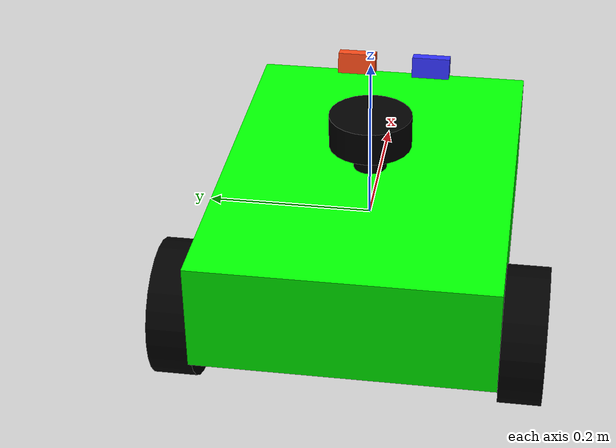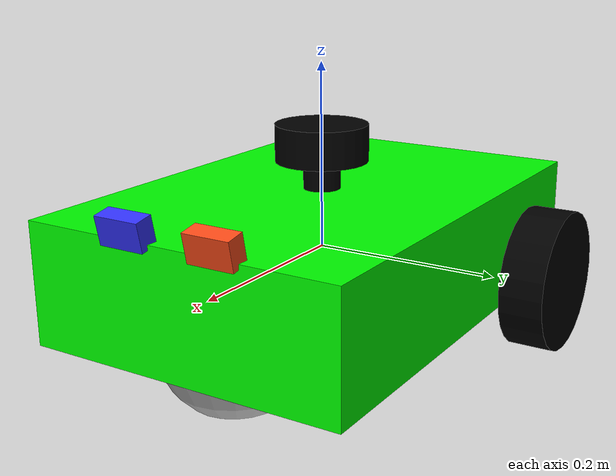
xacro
<?xml version="1.0"?>
<!-- URDF DESCRIPTION OF THE DIFFERENTIAL DRIVE ROBOT    	-->
<!-- Made by Aleksandar Haber		    				-->
<!-- June 2024           		 					    -->
<!-- Modified by Samuel Folorunsho Mar 2025 -->

<robot name="differential_drive_robot" xmlns:xacro="http://www.ros.org/wiki/xacro">

<!-- Body dimensions -->
<xacro:property name="base_link_x_dim" value="0.5"/>
<xacro:property name="base_link_y_dim" value="0.35"/>
<xacro:property name="base_link_z_dim" value="0.13"/>

<!-- Wheel dimensions and locations -->
<xacro:property name="wheel_link_radius" value="0.08"/>
<xacro:property name="wheel_link_length" value="0.05"/>
<xacro:property name="wheel_link_z_location" value="-0.05"/>

<!-- Caster sphere dimensions and locations -->
<xacro:property name="caster_link_radius" value="0.08"/>
<xacro:property name="caster_link_z_location" value="-0.05"/>

<!-- Material density -->
<xacro:property name="body_density" value="2710.0"/>
<xacro:property name="wheel_density" value="2710.0"/>
<xacro:property name="caster_density" value="2710.0"/>

<!-- Pi constant -->
<xacro:property name="pi_const" value="3.14159265"/>

<!-- Robot body mass, wheel mass, caster mass -->
<xacro:property name="body_mass" value="${body_density*base_link_x_dim*base_link_y_dim*base_link_z_dim}"/>
<xacro:property name="wheel_mass" value="${wheel_density*pi_const*wheel_link_radius*wheel_link_radius*wheel_link_length}"/>
<xacro:property name="caster_mass" value="${caster_density*(4.0/3.0)*pi_const*caster_link_radius*caster_link_radius*caster_link_radius}"/>

<!-- Moments of inertia of the wheel -->
<xacro:property name="Iz_wheel" value="${0.5*wheel_mass*wheel_link_radius*wheel_link_radius}" />
<xacro:property name="I_wheel"
value="${(1.0/12.0)*wheel_mass*(3.0*wheel_link_radius*wheel_link_radius+wheel_link_length*wheel_link_length)}" />

<!-- Moments of inertia of the caster sphere -->
<xacro:property name="I_caster" value="${(2.0/5.0)*caster_mass*caster_link_radius*caster_link_radius}" />

<!-- This macro defines the complete inertial section of the wheel -->
<!-- It is used later in the code -->
<xacro:macro name="inertia_wheel">
	<inertial>
	<origin rpy="0 0 0" xyz="0 0 0"/>
	<mass value="${wheel_mass}"/>
	<inertia ixx="${I_wheel}" ixy="0.0" ixz="0.0" iyy="${I_wheel}" iyz="0" izz="${Iz_wheel}" />
	</inertial>
</xacro:macro>

<!-- This macro defines the complete inertial section of the caster -->
<!-- It is used later in the code -->
<xacro:macro name="inertia_caster">
	<inertial>
	<origin rpy="0 0 0" xyz="0 0 0"/>
	<mass value="${caster_mass}"/>
	<inertia ixx="${I_caster}" ixy="0.0" ixz="0.0" iyy="${I_caster}" iyz="0" izz="${I_caster}" />
	</inertial>
</xacro:macro>

<!-- COLOR -->
<material name="white">
        <color rgba="1 1 1 1" />
    </material>

    <material name="orange">
        <color rgba="1 0.3 0.1 1"/>
    </material>

    <material name="blue">
        <color rgba="0.2 0.2 1 1"/>
    </material>

    <material name="black">
        <color rgba="0 0 0 1"/>
    </material>

    <material name="red">
        <color rgba="1 0 0 1"/>
    </material>

    <material name="green">
        <color rgba="0 1 0 1"/>
    </material>

    <material name="gray">
        <color rgba="0.7 0.7 0.7 1"/>
    </material>

<!-- Include the modular LIDAR sensor file -->
<xacro:include filename="$(find danny_bot)/model/sensors/lidar.xacro" />
<!-- Include the modular camera sensor file -->
<xacro:include filename="$(find danny_bot)/model/sensors/camera.xacro" />
<!-- Include the modular depth camera sensor file -->
<xacro:include filename="$(find danny_bot)/model/sensors/depth_camera.xacro" />
<!-- Include the modular IMU sensor file -->
<xacro:include filename="$(find danny_bot)/model/sensors/imu.xacro" />
<!-- Include the modular GPS sensor file -->
<xacro:include filename="$(find danny_bot)/model/sensors/gps.xacro" />

<!-- Over here we include the file that defines extra Gazebo options and motion control driver -->
<xacro:include filename="$(find danny_bot)/model/robot.gazebo" />

<!-- FROM HERE WE DEFINE LINKS, JOINTS 				 -->

<!-- We need to have this dummy link otherwise Gazebo will complain -->
<link name="base_footprint">
</link>

<joint name="base_joint" type="fixed">
	<parent link="base_footprint"/>
	<child link="base_link"/>
</joint>

<!-- START: Body link of the robot -->
<link name="base_link">
	<visual>
		<geometry>
			<box size="${base_link_x_dim} ${base_link_y_dim} ${base_link_z_dim}" />
		</geometry>
	<material name="green"/>
	<origin rpy="0 0 0" xyz="0 0 0"/>
	</visual>

	<collision>
		<geometry>
			<box size="${base_link_x_dim} ${base_link_y_dim} ${base_link_z_dim}" />
		</geometry>
		<origin rpy="0 0 0" xyz="0 0 0"/>
	</collision>

	<inertial>
		<origin rpy="0 0 0" xyz="0 0 0"/>
		<mass value="${body_mass}"/>
	<inertia
	ixx="${(1/12)*body_mass*(base_link_y_dim*base_link_y_dim+base_link_z_dim*base_link_z_dim)}" ixy="0" 		ixz="0" iyy="${(1/12)*body_mass*(base_link_x_dim*base_link_x_dim+base_link_z_dim*base_link_z_dim)}" 		iyz="0"
	izz="${(1/12)*body_mass*(base_link_y_dim*base_link_y_dim+base_link_x_dim*base_link_x_dim)}" />
	</inertial>
</link>

<!-- END: Body link of the robot -->

<!-- START: Back right wheel of the robot and the joint -->

<joint name="right_wheel_joint" type="continuous" >
	<parent link="base_link"/>
	<child  link="right_wheel_link" />
	<origin xyz="${-2*wheel_link_radius} ${-base_link_y_dim/2-wheel_link_length/2} ${wheel_link_z_location}" rpy="0 0 0" />
	<axis xyz="0 1 0"/>
	<limit effort="1000" velocity="1000"/>
	<dynamics damping="1.0" friction="1.0"/>
</joint>

<link name="right_wheel_link">
	<visual>
		<origin rpy="1.570795 0 0" xyz="0 0 0"/>
		<geometry>
			<cylinder length="${wheel_link_length}" radius="${wheel_link_radius}"/>
		</geometry>
	<material name="black"/>
	</visual>

	<collision>
		<origin rpy="1.570795 0 0" xyz="0 0 0"/>
		<geometry>
			<cylinder length="${wheel_link_length}" radius="${wheel_link_radius}"/>
		</geometry>
	</collision>

	<xacro:inertia_wheel />
</link>

<!-- END: Back right wheel of the robot and the joint -->

<!-- START: Back left wheel of the robot and the joint -->

<joint name="left_wheel_joint" type="continuous" >
	<parent link="base_link"/>
	<child  link="left_wheel_link" />
	<origin xyz="${-2*wheel_link_radius} ${base_link_y_dim/2+wheel_link_length/2} ${wheel_link_z_location}" rpy="0 0 0" />
	<axis xyz="0 1 0"/>
	<limit effort="1000" velocity="1000"/>
	<dynamics damping="1.0" friction="1.0"/>
</joint>

<link name="left_wheel_link">
	<visual>
		<origin rpy="1.570795 0 0" xyz="0 0 0"/>
		<geometry>
			<cylinder length="${wheel_link_length}" radius="${wheel_link_radius}"/>
		</geometry>
	<material name="black"/>
	</visual>

	<collision>
		<origin rpy="1.570795 0 0" xyz="0 0 0"/>
		<geometry>
			<cylinder length="${wheel_link_length}" radius="${wheel_link_radius}"/>
		</geometry>
	</collision>
	<xacro:inertia_wheel />
</link>

<!-- END: Back left wheel of the robot and the joint -->

<!-- START: Caster wheel										 -->

<joint name="caster_joint" type="fixed">
        <parent link="base_link"/>
        <child link="caster_link"/>
        <origin xyz="${2*caster_link_radius} 0 ${caster_link_z_location}" rpy="0 0 0"/>
</joint>

<link name="caster_link">
	<visual>
		<origin rpy="0 0 0" xyz="0 0 0"/>
		<geometry>
			<sphere radius="${caster_link_radius}" />
		</geometry>
	<material name="gray"/>
	</visual>

	<collision>
		<origin rpy="0 0 0" xyz="0 0 0"/>
		<geometry>
			<sphere radius="${caster_link_radius}" />
		</geometry>
	</collision>
	<xacro:inertia_caster />
</link>

<!-- END: Caster wheel											 -->

<!-- INCLUDING SENSOR REFERENCES                                          -->

<!-- Moved to modular file sensors/...-->

<!-- Add modular sensors using macros -->
<xacro:lidar_sensor parent_link="base_link" />
<xacro:camera_sensor parent_link="base_link" x_offset="0.25" y_offset="0.05" z_offset="${base_link_z_dim/2 + 0.01}" />
<xacro:depth_camera_sensor parent_link="base_link" x_offset="0.25" y_offset="-0.05" z_offset="${base_link_z_dim/2 + 0.01}" />
<xacro:imu_sensor parent_link="base_link" />
<xacro:gps_sensor parent_link="base_link" />

</robot>

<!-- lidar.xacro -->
<robot xmlns:xacro="http://www.ros.org/wiki/xacro">

  <!-- LIDAR connector and sensor -->
  <xacro:macro name="lidar_sensor" params="parent_link">
    <!-- LIDAR connector link -->
    <joint name="lidar_connector_joint" type="fixed">
        <parent link="${parent_link}"/>
        <child link="lidar_connector_link"/>
        <origin xyz="0 0 ${base_link_z_dim/2}" rpy="0 0 0"/>
    </joint>

    <link name="lidar_connector_link">
        <visual>
            <origin xyz="0 0 0" rpy="0 0 0"/>
            <geometry>
                <cylinder radius="0.02" length="0.06"/>
            </geometry>
            <material name="black"/>
        </visual>
        <collision>
            <origin xyz="0 0 0" rpy="0 0 0"/>
            <geometry>
                <cylinder radius="0.02" length="0.06"/>
            </geometry>
        </collision>
        <inertial>
            <mass value="0.1"/>
            <origin xyz="0 0 0" rpy="0 0 0"/>
            <inertia ixx="0.000033" ixy="0" ixz="0" iyy="0.000033" iyz="0" izz="0.000033"/>
        </inertial>
    </link>

    <!-- LIDAR sensor -->
    <joint name="lidar_joint" type="fixed">
        <parent link="lidar_connector_link"/>
        <child link="lidar_link"/>
        <origin xyz="0 0 0.05" rpy="0 0 0"/>
    </joint>

    <link name="lidar_link">
        <visual>
            <origin xyz="0 0 0" rpy="0 0 0"/>
            <geometry>
                <cylinder radius="0.05" length="0.04"/>
            </geometry>
            <material name="black"/>
        </visual>
        <collision>
            <origin xyz="0 0 0" rpy="0 0 0"/>
            <geometry>
                <cylinder radius="0.05" length="0.04"/>
            </geometry>
        </collision>
        <inertial>
            <mass value="0.1"/>
            <origin xyz="0 0 0" rpy="0 0 0"/>
            <inertia ixx="0.000033" ixy="0" ixz="0" iyy="0.000033" iyz="0" izz="0.000033"/>
        </inertial>
    </link>

    <!-- LIDAR sensor in Gazebo -->
    <gazebo reference="lidar_link">
      <material>Gazebo/Black</material>
      <sensor name="lidar" type="ray">
        <pose>0 0 0 0 0 0</pose>
        <visualize>true</visualize>
        <update_rate>10</update_rate>
        <ray>
          <scan>
            <horizontal>
              <samples>360</samples>
              <resolution>1</resolution>
              <min_angle>-3.14159</min_angle>
              <max_angle>3.14159</max_angle>
            </horizontal>
          </scan>
          <range>
            <min>0.1</min>
            <max>10.0</max>
            <resolution>0.01</resolution>
          </range>
          <noise>
            <type>gaussian</type>
            <mean>0.0</mean>
            <stddev>0.01</stddev>
          </noise>
        </ray>
        <plugin name="lidar_controller" filename="libgazebo_ros_ray_sensor.so">
          <ros>
            <namespace>/</namespace>
            <remapping>~/out:=scan</remapping>
          </ros>
          <output_type>sensor_msgs/LaserScan</output_type>
          <frame_name>lidar_link</frame_name>
        </plugin>
      </sensor>
    </gazebo>

    <gazebo reference="lidar_connector_link">
      <mu1>0.000002</mu1>
      <mu2>0.000002</mu2>
      <material>Gazebo/Black</material>
    </gazebo>
  </xacro:macro>

</robot>

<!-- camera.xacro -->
<robot xmlns:xacro="http://www.ros.org/wiki/xacro">

  <!-- Camera sensor -->
  <xacro:macro name="camera_sensor" params="parent_link x_offset y_offset z_offset">
    <!-- Camera sensor -->
    <joint name="camera_joint" type="fixed">
        <parent link="${parent_link}"/>
        <child link="camera_link"/>
        <origin xyz="${x_offset} ${y_offset} ${z_offset}" rpy="0 0.2 0"/>  <!-- Positioned forward and slightly tilted down -->
    </joint>

    <link name="camera_link">
        <visual>
            <origin xyz="0 0 0" rpy="0 ${pi_const/2} 0"/>
            <geometry>
                <box size="0.03 0.05 0.02"/>
            </geometry>
            <material name="orange"/>
        </visual>
        <collision>
            <origin xyz="0 0 0" rpy="0 0 0"/>
            <geometry>
                <box size="0.03 0.05 0.05"/>
            </geometry>
        </collision>
        <inertial>
            <mass value="0.1"/>
            <origin xyz="0 0 0" rpy="0 0 0"/>
            <inertia ixx="0.000033" ixy="0" ixz="0" iyy="0.000033" iyz="0" izz="0.000033"/>
        </inertial>
    </link>

    <!-- Camera optical frame -->
    <joint name="camera_optical_joint" type="fixed">
        <parent link="camera_link"/>
        <child link="camera_optical_frame"/>
        <origin xyz="0 0 0" rpy="${-pi_const/2} 0 ${-pi_const/2}"/>
    </joint>

    <link name="camera_optical_frame"/>

    <!-- Camera sensor in Gazebo -->
    <gazebo reference="camera_link">
      <material>Gazebo/Orange</material>
      <sensor name="camera" type="camera">
        <camera>
          <horizontal_fov>1.3962634</horizontal_fov>
          <image>
            <width>640</width>
            <height>480</height>
            <format>R8G8B8</format>
          </image>
          <clip>
            <near>0.02</near>
            <far>300</far>
          </clip>
          <noise>
            <type>gaussian</type>
            <mean>0.0</mean>
            <stddev>0.007</stddev>
          </noise>
        </camera>
        <always_on>1</always_on>
        <update_rate>30</update_rate>
        <visualize>true</visualize>
        <plugin name="camera_controller" filename="libgazebo_ros_camera.so">
          <ros>
            <namespace>/</namespace>
            <remapping>image_raw:=camera/image_raw</remapping>
            <remapping>camera_info:=camera/camera_info</remapping>
          </ros>
          <output_type>sensor_msgs/Image</output_type>
          <frame_name>camera_optical_frame</frame_name>
          <camera_name>camera</camera_name>
          <update_rate>30.0</update_rate>
        </plugin>
      </sensor>
    </gazebo>
  </xacro:macro>

</robot>

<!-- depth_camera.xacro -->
<robot xmlns:xacro="http://www.ros.org/wiki/xacro">

  <!-- Depth Camera sensor -->
  <xacro:macro name="depth_camera_sensor" params="parent_link x_offset y_offset z_offset">
    <!-- Depth Camera mount directly on body -->
    <joint name="depth_camera_joint" type="fixed">
        <parent link="${parent_link}"/>
        <child link="depth_camera_link"/>
        <origin xyz="${x_offset} ${y_offset} ${z_offset}" rpy="0 0.2 0"/>  <!-- Positioned forward and slightly tilted down -->
    </joint>

    <link name="depth_camera_link">
        <visual>
            <origin xyz="0 0 0" rpy="0 ${pi_const/2} 0"/>
            <geometry>
                <box size="0.03 0.05 0.02"/>
            </geometry>
            <material name="blue"/>
        </visual>
        <collision>
            <origin xyz="0 0 0" rpy="0 0 0"/>
            <geometry>
                <box size="0.03 0.05 0.05"/>
            </geometry>
        </collision>
        <inertial>
            <mass value="0.1"/>
            <origin xyz="0 0 0" rpy="0 0 0"/>
            <inertia ixx="0.000033" ixy="0" ixz="0" iyy="0.000033" iyz="0" izz="0.000033"/>
        </inertial>
    </link>

    <!-- Depth Camera optical frame -->
    <joint name="depth_camera_optical_joint" type="fixed">
        <parent link="depth_camera_link"/>
        <child link="depth_camera_optical_frame"/>
        <origin xyz="0 0 0" rpy="${-pi_const/2} 0 ${-pi_const/2}"/>
    </joint>

    <link name="depth_camera_optical_frame"/>

    <!-- Depth Camera sensor in Gazebo -->
    <gazebo reference="depth_camera_link">
      <material>Gazebo/Blue</material>
      <sensor name="depth_camera" type="depth">
        <camera>
          <horizontal_fov>1.047198</horizontal_fov>
          <image>
            <width>640</width>
            <height>480</height>
            <format>R8G8B8</format>
          </image>
          <clip>
            <near>0.05</near>
            <far>8.0</far>
          </clip>
          <noise>
            <type>gaussian</type>
            <mean>0.0</mean>
            <stddev>0.007</stddev>
          </noise>
        </camera>
        <always_on>1</always_on>
        <update_rate>20</update_rate>
        <visualize>true</visualize>
        <plugin name="depth_camera_controller" filename="libgazebo_ros_camera.so">
          <ros>
            <namespace>/</namespace>
            <remapping>image_raw:=depth_camera/image_raw</remapping>
            <remapping>camera_info:=depth_camera/camera_info</remapping>
            <remapping>points:=depth_camera/points</remapping>
          </ros>
          <camera_name>depth_camera</camera_name>
          <frame_name>depth_camera_optical_frame</frame_name>
          <hack_baseline>0.07</hack_baseline>
          <output_type>sensor_msgs/PointCloud2</output_type>
          <distortion_k1>0.0</distortion_k1>
          <distortion_k2>0.0</distortion_k2>
          <distortion_k3>0.0</distortion_k3>
          <distortion_t1>0.0</distortion_t1>
          <distortion_t2>0.0</distortion_t2>
        </plugin>
      </sensor>
    </gazebo>
  </xacro:macro>

</robot>

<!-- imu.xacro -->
<robot xmlns:xacro="http://www.ros.org/wiki/xacro">

  <!-- IMU sensor -->
  <xacro:macro name="imu_sensor" params="parent_link">
    <joint name="imu_joint" type="fixed">
        <parent link="${parent_link}"/>
        <child link="imu_link"/>
        <origin xyz="0 0 ${base_link_z_dim/2 - 0.05}" rpy="0 0 0"/>
    </joint>

    <link name="imu_link">
        <visual>
            <origin xyz="0 0 0" rpy="0 0 0"/>
            <geometry>
                <box size="0.02 0.02 0.01"/>
            </geometry>
            <material name="red"/>
        </visual>
        <collision>
            <origin xyz="0 0 0" rpy="0 0 0"/>
            <geometry>
                <box size="0.02 0.02 0.01"/>
            </geometry>
        </collision>
        <inertial>
            <mass value="0.01"/>
            <origin xyz="0 0 0" rpy="0 0 0"/>
            <inertia ixx="0.000001" ixy="0" ixz="0" iyy="0.000001" iyz="0" izz="0.000001"/>
        </inertial>
    </link>

    <!-- IMU sensor in Gazebo -->
    <gazebo reference="imu_link">
      <material>Gazebo/Red</material>
      <gravity>true</gravity>
      <sensor name="imu_sensor" type="imu">
        <always_on>true</always_on>
        <update_rate>100</update_rate>
        <visualize>true</visualize>
        <topic>imu</topic>
        <plugin name="imu_plugin" filename="libgazebo_ros_imu_sensor.so">
          <ros>
            <namespace>/</namespace>
            <remapping>~/out:=imu/data</remapping>
          </ros>
          <topicName>imu/data</topicName>
          <bodyName>imu_link</bodyName>
          <frameName>imu_link</frameName>
          <initialOrientationAsReference>false</initialOrientationAsReference>
          <accelDrift>0.005 0.005 0.005</accelDrift>
          <accelGaussianNoise>0.005 0.005 0.005</accelGaussianNoise>
          <rateDrift>0.005 0.005 0.005</rateDrift>
          <rateGaussianNoise>0.005 0.005 0.005</rateGaussianNoise>
          <headingDrift>0.005</headingDrift>
          <headingGaussianNoise>0.005</headingGaussianNoise>
        </plugin>
      </sensor>
    </gazebo>
  </xacro:macro>

</robot>

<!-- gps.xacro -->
<robot xmlns:xacro="http://www.ros.org/wiki/xacro">

  <!-- GPS sensor -->
  <xacro:macro name="gps_sensor" params="parent_link">
    <joint name="gps_joint" type="fixed">
        <parent link="${parent_link}"/>
        <child link="gps_link"/>
        <origin xyz="0 0 ${base_link_z_dim/2 + 0.02}" rpy="0 0 0"/>
    </joint>

    <link name="gps_link">
        <visual>
            <origin xyz="0 0 0" rpy="0 0 0"/>
            <geometry>
                <cylinder radius="0.01" length="0.01"/>
            </geometry>
            <material name="white"/>
        </visual>
        <collision>
            <origin xyz="0 0 0" rpy="0 0 0"/>
            <geometry>
                <cylinder radius="0.01" length="0.01"/>
            </geometry>
        </collision>
        <inertial>
            <mass value="0.01"/>
            <origin xyz="0 0 0" rpy="0 0 0"/>
            <inertia ixx="0.000001" ixy="0" ixz="0" iyy="0.000001" iyz="0" izz="0.000001"/>
        </inertial>
    </link>

    <!-- GPS sensor in Gazebo -->
    <gazebo reference="gps_link">
      <material>Gazebo/White</material>
      <sensor name="gps" type="gps">
        <always_on>true</always_on>
        <update_rate>10.0</update_rate>
        <visualize>true</visualize>
        <topic>gps/fix</topic>
        <plugin name="gps_controller" filename="libgazebo_ros_gps_sensor.so">
          <ros>
            <namespace>/</namespace>
            <remapping>~/out:=gps/fix</remapping>
          </ros>
          <frame_name>gps_link</frame_name>
          <!-- Reference position for GPS -->
          <reference_latitude>49.9</reference_latitude>
          <reference_longitude>8.9</reference_longitude>
          <reference_altitude>0.0</reference_altitude>
          <reference_heading>0.0</reference_heading>
          <!-- GPS Position Noise -->
          <position_noise>
            <x>0.05</x>
            <y>0.05</y>
            <z>0.05</z>
          </position_noise>
          <!-- GPS Velocity Noise -->
          <velocity_noise>
            <x>0.01</x>
            <y>0.01</y>
            <z>0.01</z>
          </velocity_noise>
        </plugin>
      </sensor>
    </gazebo>
  </xacro:macro>

</robot>
